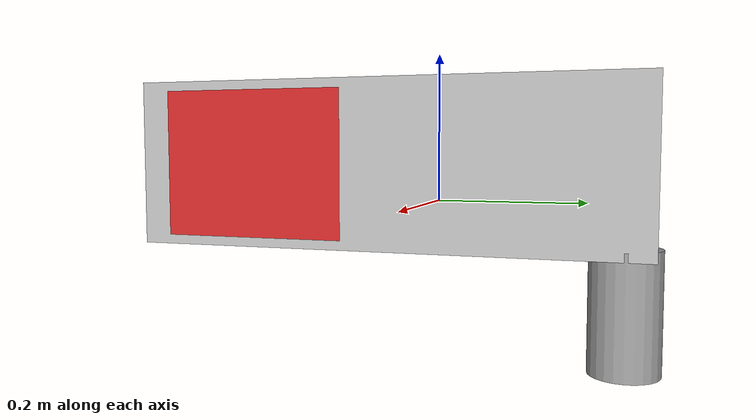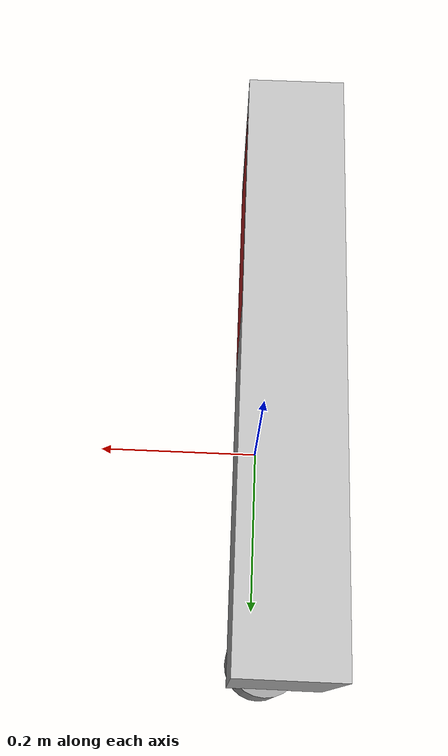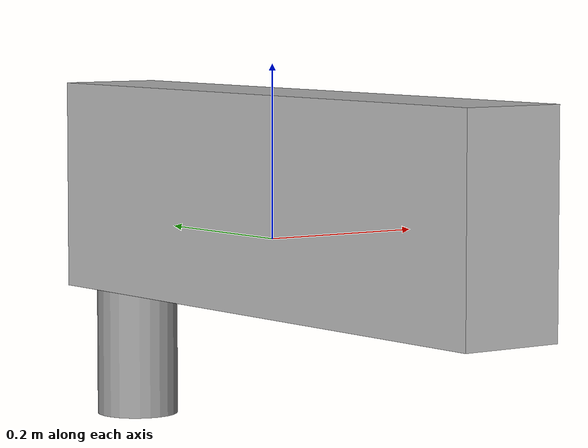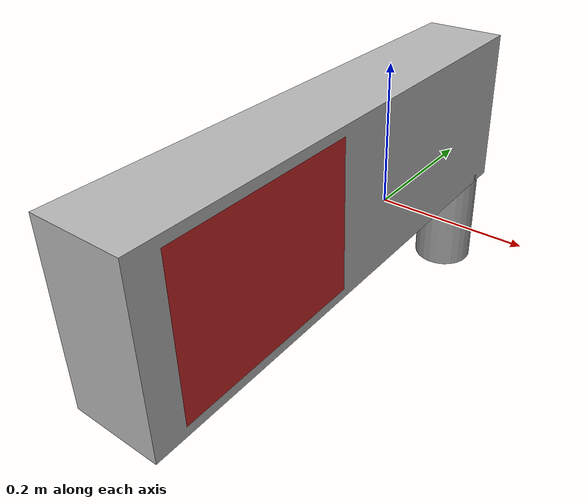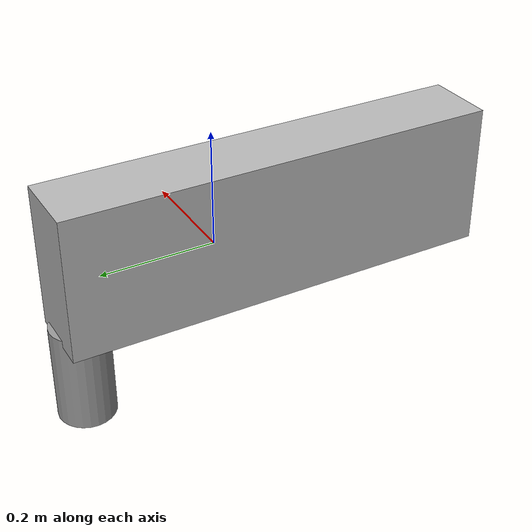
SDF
<?xml version='1.0'?>
<sdf version='1.6'>
  <model name='traffic_light_red'>
    <link name='link_0'>
      <inertial>
        <mass>0.0221441</mass>
        <inertia>
          <ixx>0.00113117</ixx>
          <ixy>0</ixy>
          <ixz>0</ixz>
          <iyy>0.000137192</iyy>
          <iyz>0</iyz>
          <izz>0.00104885</izz>
        </inertia>
        <pose>0 0 0 0 -0 0</pose>
      </inertial>
      <pose>-0.034548 -0.084737 0.049326 0 -0 0</pose>
      <visual name='visual'>
        <pose>0 0 0 0 -0 0</pose>
        <geometry>
          <box>
            <size>0.121937 0.743981 0.243877</size>
          </box>
        </geometry>
        <material>
          <lighting>1</lighting>
          <script>
            <uri>file://media/materials/scripts/gazebo.material</uri>
            <name>Gazebo/Mustard</name>
          </script>
          <shader type='pixel'/>
          <emissive>0 0 0 1</emissive>
        </material>
        <transparency>0</transparency>
        <cast_shadows>1</cast_shadows>
      </visual>
      <collision name='collision'>
        <laser_retro>0</laser_retro>
        <max_contacts>10</max_contacts>
        <pose>0 0 0 0 -0 0</pose>
        <geometry>
          <box>
            <size>0.121937 0.743981 0.243877</size>
          </box>
        </geometry>

      </collision>
    </link>
    <link name='link_1'>
      <inertial>
        <mass>0.00190017</mass>
        <inertia>
          <ixx>1.948e-05</ixx>
          <ixy>0</ixy>
          <ixz>0</ixz>
          <iyy>7.59e-06</iyy>
          <iyz>0</iyz>
          <izz>1.221e-05</izz>
        </inertia>
        <pose>0 0 0 0 -0 0</pose>
      </inertial>
      <pose>0.0266205 -0.276538 0.049326 0 -0 0</pose>
      <gravity>1</gravity>
      <self_collide>0</self_collide>
      <kinematic>0</kinematic>
      <enable_wind>0</enable_wind>
      <visual name='visual'>
        <pose>0 0 0 0 -0 0</pose>
        <geometry>
          <box>
            <size>0.0 0.275892 0.216628</size>
          </box>
        </geometry>
        <material>
          <lighting>1</lighting>
          <script>
            <uri>file://media/materials/scripts/gazebo.material</uri>
            <name>Gazebo/Red</name>
          </script>
          <shader type='pixel'/>
        </material>
        <transparency>0</transparency>
        <cast_shadows>1</cast_shadows>
      </visual>
      <collision name='collision'>
        <laser_retro>0</laser_retro>
        <max_contacts>10</max_contacts>
        <pose>0 0 0 0 -0 0</pose>
        <geometry>
          <box>
            <size>0.0 0.275892 0.216628</size>
          </box>
        </geometry>
      </collision>
    </link>
    <link name='link_2'>
      <inertial>
        <mass>0.00159248</mass>
        <inertia>
          <ixx>4.7417e-06</ixx>
          <ixy>0</ixy>
          <ixz>0</ixz>
          <iyy>4.7417e-06</iyy>
          <iyz>0</iyz>
          <izz>1.86817e-06</izz>
        </inertia>
        <pose>0 0 0 0 -0 0</pose>
      </inertial>
      <pose>-0.021688 0.249252 -0.1452 0 -0 0</pose>
      <visual name='visual'>
        <pose>0 0 0 0 -0 0</pose>
        <geometry>
          <cylinder>
            <radius>0.0484379</radius>
            <length>0.169387</length>
          </cylinder>
        </geometry>
        <material>
          <lighting>1</lighting>
          <script>
            <uri>file://media/materials/scripts/gazebo.material</uri>
            <name>Gazebo/Grey</name>
          </script>
          <shader type='pixel'/>
        </material>
        <transparency>0</transparency>
        <cast_shadows>1</cast_shadows>
      </visual>
      <collision name='collision'>
        <laser_retro>0</laser_retro>
        <max_contacts>10</max_contacts>
        <pose>0 0 0 0 -0 0</pose>
        <geometry>
          <cylinder>
            <radius>0.048438</radius>
            <length>0.169387</length>
          </cylinder>
        </geometry>
      </collision>
    </link>
    <static>1</static>
    <allow_auto_disable>1</allow_auto_disable>
  </model>
</sdf>
